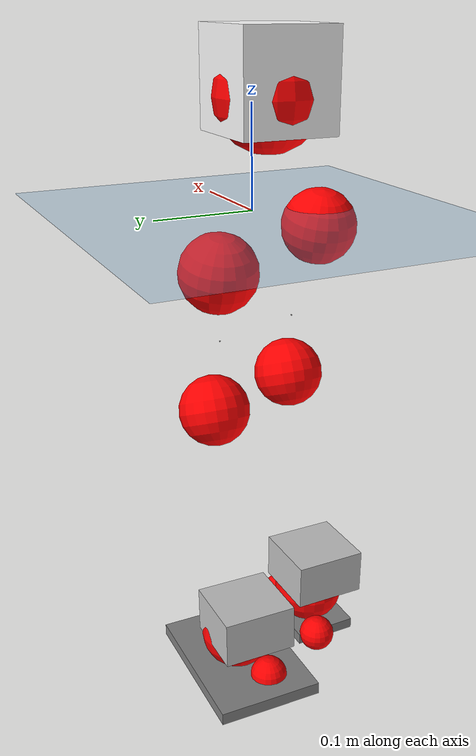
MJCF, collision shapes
<mujoco model="pi_12dof_release_v1">
  <compiler angle="radian" assetdir="assets" balanceinertia="true" inertiafromgeom="false"/>

  <option timestep="0.005" density="1.2" viscosity="2e-05"/>

  <size nkey="1"/>

  <visual>
    <quality shadowsize="8192"/>
    <map shadowclip="0.5"/>
  </visual>

  <default>
    <default class="/">
      <joint armature="0.01" damping="0.01" frictionloss="0.01"/>
      <geom contype="0" conaffinity="0" group="1" solref="-1000 -80"/>
      <site size="0.01 0.005 0.005" group="5"/>
      <general forcelimited="true" biastype="affine" gainprm="20" biasprm="0 -20 -0.5"/>
      <default class="foot">
        <geom size="0.0845 0.036 0.005" type="box" condim="6" group="4" priority="1" friction="0.9 0.2 0.2" solimp="0.015 1 0.005"/>
      </default>
      <default class="reward_collision_sphere">
        <geom group="5" rgba="1 0 0 1"/>
      </default>
    </default>
  </default>

  <asset>
    <texture type="skybox" colorspace="auto" name="//unnamed_texture_0" builtin="gradient" rgb1="0.95 0.95 0.95" rgb2="0.95 0.95 0.95" width="100" height="600"/>
    <texture type="2d" colorspace="auto" name="texplane" builtin="checker" rgb1="0.345 0.575 0.748" rgb2="0.345 0.575 0.748" markrgb="1 1 1" width="512" height="512"/>
    <material name="MatPlane" class="/" texture="texplane" texuniform="true" texrepeat="2 2" specular="0.9"/>
    <mesh name="baselink_1" class="/" file="baselink_1.STL"/>
    <mesh name="r_hip_pitch_link" class="/" file="r_hip_pitch_link.STL"/>
    <mesh name="r_hip_roll_link" class="/" file="r_hip_roll_link.STL"/>
    <mesh name="r_thigh_link" class="/" file="r_thigh_link.STL"/>
    <mesh name="r_calf_link" class="/" file="r_calf_link.STL"/>
    <mesh name="r_ankle_pitch_link" class="/" file="r_ankle_pitch_link.STL"/>
    <mesh name="r_ankle_roll_link" class="/" file="r_ankle_roll_link.STL"/>
    <mesh name="l_hip_pitch_link" class="/" file="l_hip_pitch_link.STL"/>
    <mesh name="l_hip_roll_link" class="/" file="l_hip_roll_link.STL"/>
    <mesh name="l_thigh_link" class="/" file="l_thigh_link.STL"/>
    <mesh name="l_calf_link" class="/" file="l_calf_link.STL"/>
    <mesh name="l_ankle_pitch_link" class="/" file="l_ankle_pitch_link.STL"/>
    <mesh name="l_ankle_roll_link" class="/" file="l_ankle_roll_link.STL"/>
  </asset>

  <worldbody>
    <geom name="floor" class="/" size="100 100 0.125" type="plane" group="0" material="MatPlane"/>
    <light name="toplight_shadow" class="/" pos="0 0 5" dir="0.0990148 0.0990148 -0.990148" type="directional" ambient="0.04 0.04 0.04" diffuse="0.55 0.55 0.55" specular="0.12 0.12 0.12"/>
    <light name="toplight_fill" class="/" pos="0 0 5" dir="0.0990148 0.0990148 -0.990148" type="directional" castshadow="false" ambient="0.04 0.04 0.04" diffuse="0.3 0.3 0.3" specular="0.08 0.08 0.08"/>
    <body name="trunk" pos="-0.0155554 -0.00880286 0.00383017" quat="0.999994 0.00278614 0.00185766 0.000220503">
      <inertial pos="0.000135845 0.00377001 0.060111" quat="0.71484 -0.033135 0.0233716 0.698112" mass="1.80794" diaginertia="0.00079833 0.00119703 0.0265832"/>
      <joint name="//unnamed_joint_0" type="free"/>
      <geom name="//unnamed_geom_1" class="/" type="mesh" density="0" rgba="1 1 1 1" mesh="baselink_1"/>
      <geom name="//unnamed_geom_2" class="/" size="0.0473154 0.0473154 0.0473154" pos="0 0 0.117021" type="box" rgba="1 1 1 1"/>
      <geom name="//unnamed_geom_3" class="reward_collision_sphere" size="0.052047" pos="0 0 0.102393"/>
      <site name="imu" class="/" pos="-0.035916 0.0252207 0.0853428" size="0.00946309"/>
      <camera name="track" class="/" pos="0 -1.43517 0" quat="0.707107 0.707107 0 0" mode="trackcom"/>
      <camera name="ego_camera" class="/" pos="0.0493934 0 0.263297" quat="-0.5 -0.5 0.5 0.5"/>
      <body name="r_hip_pitch_link" pos="-0.00360863 -0.0198556 -0.0370877" quat="0.992355 -0.00560209 -0.123207 0.00448675">
        <inertial pos="0.0170827 -0.0306504 0.00157968" quat="-0.0178824 0.702959 -0.0346469 0.710161" mass="0.351028" diaginertia="1.5033e-05 2.24958e-05 0.000611642"/>
        <joint name="r_hip_pitch_joint" class="/" pos="0 0 0" axis="-0.0171888 -0.99745 -0.069274" stiffness="0.0214813" range="-2.0777 1.00498" armature="0.00944347" damping="0" frictionloss="0.00941156"/>
        <geom name="//unnamed_geom_4" class="/" type="mesh" density="0" rgba="0.75294 0.75294 0.75294 1" mesh="r_hip_pitch_link"/>
        <geom name="//unnamed_geom_5" class="/" size="0.000473154 0.000473154 0.000473154" type="box" rgba="0.75294 0.75294 0.75294 1"/>
        <body name="r_hip_roll_link" pos="0.0121259 -0.0398874 0.0106981" quat="0.999989 0.00343197 0.000237456 0.00316554">
          <inertial pos="0.00250444 -0.000551677 -0.0713738" quat="0.70378 -0.0312528 -0.0922863 0.703704" mass="0.347624" diaginertia="4.40582e-05 5.80623e-05 0.000980122"/>
          <joint name="r_hip_roll_joint" class="/" pos="0 0 0" axis="-0.997362 0.0722247 0.00720503" stiffness="0.00241462" range="-0.213239 0.190417" armature="0.00453607" damping="0.0518361" frictionloss="0.0156158"/>
          <geom name="//unnamed_geom_6" class="/" type="mesh" density="0" rgba="0.75294 0.75294 0.75294 1" mesh="r_hip_roll_link"/>
          <geom name="//unnamed_geom_7" class="/" size="0.000473154 0.000473154 0.000473154" type="box" rgba="0.75294 0.75294 0.75294 1"/>
          <geom name="//unnamed_geom_8" class="reward_collision_sphere" size="0.0378523"/>
          <body name="r_thigh_link" pos="-0.00292445 0.0179793 -0.0980899" quat="0.999979 0.00453873 -0.00452574 -0.000583608">
            <inertial pos="-0.00993496 0.00739962 -0.0683636" quat="0.683046 0.729776 0.00788755 0.0285022" mass="0.0700321" diaginertia="1.5494e-05 1.51414e-05 0.000393204"/>
            <joint name="r_thigh_joint" class="/" pos="0 0 0" axis="0.0478671 -0.0287127 -0.998441" stiffness="0.0855956" range="-0.559409 0.255721" armature="0.00845527" damping="0" frictionloss="0.0140844"/>
            <geom name="//unnamed_geom_9" class="/" type="mesh" density="0" rgba="0.75294 0.75294 0.75294 1" mesh="r_thigh_link"/>
            <geom name="//unnamed_geom_10" class="/" size="0.000473154 0.000473154 0.000473154" type="box" rgba="0.75294 0.75294 0.75294 1"/>
            <body name="r_calf_link" pos="0.0177079 -0.019178 -0.0884513" quat="0.947468 0.0014352 0.319846 0.000683477">
              <inertial pos="-0.0174949 -0.00799026 -0.0858855" quat="0.998266 -0.0348286 0.0463607 -0.0101409" mass="0.509668" diaginertia="0.000359957 0.00060614 0.00093419"/>
              <joint name="r_calf_joint" class="/" pos="0 0 0" axis="0.0817017 -0.996651 0.00328685" stiffness="0.0502923" range="-1.57167 0.664173" armature="0.00506795" damping="0.0317197" frictionloss="0.0120585"/>
              <geom name="//unnamed_geom_11" class="/" type="mesh" density="0" rgba="0.75294 0.75294 0.75294 1" mesh="r_calf_link"/>
              <geom name="//unnamed_geom_12" class="/" size="0.000473154 0.000473154 0.000473154" type="box" rgba="0.75294 0.75294 0.75294 1"/>
              <geom name="//unnamed_geom_13" class="reward_collision_sphere" size="0.0378523"/>
              <body name="r_ankle_pitch_link" pos="0.00137509 0.00754557 -0.216083" quat="0.980132 0.000676374 -0.198343 -0.000447361">
                <inertial pos="0.0134643 -0.0159917 -0.00713495" quat="0.000854038 0.709492 -0.00195684 0.70471" mass="0.133236" diaginertia="3.71774e-05 3.53977e-05 0.000721289"/>
                <joint name="r_ankle_pitch_joint" class="/" pos="0 0 0" axis="0.0493993 -0.998148 -0.0354902" range="-1.48516 0.501079" armature="0.0157005" damping="0" frictionloss="0.015566"/>
                <geom name="//unnamed_geom_14" class="/" type="mesh" density="0" rgba="0.75294 0.75294 0.75294 1" mesh="r_ankle_pitch_link"/>
                <geom name="//unnamed_geom_15" class="/" size="0.036906 0.0378523 0.0236577" type="box" rgba="0.75294 0.75294 0.75294 1"/>
                <body name="r_ankle_roll_link" pos="0.0525057 -0.00549141 -0.0147808" quat="0.999962 -0.00404981 -0.00770863 -0.000219607">
                  <inertial pos="-0.0343062 0.0122369 -0.035744" quat="0.561304 0.407718 0.451231 0.561332" mass="0.554461" diaginertia="0.000130148 0.000170068 0.0015813"/>
                  <joint name="r_ankle_roll_joint" class="/" pos="0 0 0" axis="-0.996169 0.0538561 0.0689011" stiffness="0.0578219" range="-0.190443 0.257323" armature="0.00616723" damping="0" frictionloss="0.0119929"/>
                  <geom name="//unnamed_geom_16" class="/" type="mesh" density="0" rgba="0.75294 0.75294 0.75294 1" mesh="r_ankle_roll_link"/>
                  <geom name="//unnamed_geom_17" class="/" type="mesh" rgba="0.75294 0.75294 0.75294 1" mesh="r_ankle_roll_link"/>
                  <geom name="right_foot" class="foot" size="0.0414022 0.0337067 0.00581444" pos="-0.0335875 0 -0.0643615"/>
                  <geom name="//unnamed_geom_19" class="reward_collision_sphere" size="0.0378523" pos="-0.032929 0 -0.0292552"/>
                  <geom name="//unnamed_geom_20" class="reward_collision_sphere" size="0.0189262" pos="0.00987869 0.0143517 -0.0585105"/>
                  <geom name="//unnamed_geom_21" class="reward_collision_sphere" size="0.0189262" pos="-0.0790295 0.0143517 -0.0585105"/>
                  <site name="right_foot" class="foot" pos="-0.0335875 0 -0.0643615" size="0.00946309"/>
                </body>
              </body>
            </body>
          </body>
        </body>
      </body>
      <body name="l_hip_pitch_link" pos="-0.0189068 0.0319934 -0.0424349" quat="0.992537 -0.00242121 -0.12192 -0.000443682">
        <inertial pos="-0.0161337 0.0573257 -0.00154347" quat="-0.111128 0.709464 0.0115555 0.695829" mass="0.378523" diaginertia="1.763e-05 2.01821e-05 0.000815109"/>
        <joint name="l_hip_pitch_joint" class="/" pos="0 0 0" axis="-0.0905375 0.995752 -0.0167352" stiffness="0.0785155" range="-0.923866 1.65263" armature="0.0169411" damping="0" frictionloss="0.00470038"/>
        <geom name="//unnamed_geom_22" class="/" type="mesh" density="0" rgba="0.75294 0.75294 0.75294 1" mesh="l_hip_pitch_link"/>
        <geom name="//unnamed_geom_23" class="/" size="0.000473154 0.000473154 0.000473154" type="box" rgba="0.75294 0.75294 0.75294 1"/>
        <body name="l_hip_roll_link" pos="-0.0107991 0.0320716 -0.00237621" quat="0.999991 0.00242037 0.00106271 0.00335193">
          <inertial pos="-0.0076322 -0.0168486 -0.0923805" quat="0.732446 -0.114228 -0.0946616 0.664465" mass="0.25412" diaginertia="3.99371e-05 4.22475e-05 0.000882464"/>
          <joint name="l_hip_roll_joint" class="/" pos="0 0 0" axis="-0.998604 -0.0281026 0.0447308" stiffness="0.0583317" range="-0.403879 -0.0848667" armature="0.00191878" damping="0.0574038" frictionloss="0.0147305"/>
          <geom name="//unnamed_geom_24" class="/" type="mesh" density="0" rgba="0.75294 0.75294 0.75294 1" mesh="l_hip_roll_link"/>
          <geom name="//unnamed_geom_25" class="/" size="0.000473154 0.000473154 0.000473154" type="box" rgba="0.75294 0.75294 0.75294 1"/>
          <geom name="//unnamed_geom_26" class="reward_collision_sphere" size="0.0378523"/>
          <body name="l_thigh_link" pos="0.0117315 -0.014295 -0.0835848" quat="0.99996 -0.00170897 0.00542866 -0.00691283">
            <inertial pos="-0.00435844 0.0011081 -0.0882961" quat="0.656634 0.752679 -0.00912151 0.0471372" mass="0.11215" diaginertia="1.56628e-05 1.97532e-05 0.000366774"/>
            <joint name="l_thigh_joint" class="/" pos="0 0 0" axis="-0.0399611 -0.00691578 -0.999177" range="-0.26808 0.374154" armature="0.00790084" damping="0.0663978" frictionloss="0.00742199"/>
            <geom name="//unnamed_geom_27" class="/" type="mesh" density="0" rgba="0.75294 0.75294 0.75294 1" mesh="l_thigh_link"/>
            <geom name="//unnamed_geom_28" class="/" size="0.000473154 0.000473154 0.000473154" type="box" rgba="0.75294 0.75294 0.75294 1"/>
            <body name="l_calf_link" pos="0.0167564 -0.0092136 -0.0981277" quat="0.947044 0.00155611 0.321084 -0.00335286">
              <inertial pos="-0.0129061 -0.00783081 -0.103352" quat="0.996552 0.0458855 -0.0448015 -0.0526425" mass="0.737821" diaginertia="0.000402516 0.000605669 0.00106917"/>
              <joint name="l_calf_joint" class="/" pos="0 0 0" axis="0.0556675 0.997065 -0.0525636" range="-0.903002 1.47564" armature="0.0094436" damping="0" frictionloss="0.016374"/>
              <geom name="//unnamed_geom_29" class="/" type="mesh" density="0" rgba="0.75294 0.75294 0.75294 1" mesh="l_calf_link"/>
              <geom name="//unnamed_geom_30" class="/" size="0.000473154 0.000473154 0.000473154" type="box" rgba="0.75294 0.75294 0.75294 1"/>
              <geom name="//unnamed_geom_31" class="reward_collision_sphere" size="0.0378523"/>
              <body name="l_ankle_pitch_link" pos="-0.00459611 0.00689294 -0.22031" quat="0.980885 -0.00110409 -0.194583 4.75589e-05">
                <inertial pos="-0.00382617 0.00297556 -0.0075827" quat="0.0868725 0.702845 0.0162366 0.705831" mass="0.15744" diaginertia="3.85839e-05 3.36524e-05 0.000603574"/>
                <joint name="l_ankle_pitch_joint" class="/" pos="0 0 0" axis="0.0180451 0.999163 -0.0367168" range="-0.752679 1.06331" armature="0.013277" damping="0.0682727" frictionloss="0.00664558"/>
                <geom name="//unnamed_geom_32" class="/" type="mesh" density="0" rgba="0.75294 0.75294 0.75294 1" mesh="l_ankle_pitch_link"/>
                <geom name="//unnamed_geom_33" class="/" size="0.036906 0.0378523 0.0236577" type="box" rgba="0.75294 0.75294 0.75294 1"/>
                <body name="l_ankle_roll_link" pos="0.0493567 0.00253964 0.00405904" quat="0.999999 -0.000536819 0.000337546 -0.000835871">
                  <inertial pos="-0.000313092 0.017613 -0.0377813" quat="0.572088 0.430293 0.421196 0.556918" mass="0.378117" diaginertia="0.00017055 0.000168001 0.00197523"/>
                  <joint name="l_ankle_roll_joint" class="/" pos="0 0 0" axis="-0.99928 0.0256865 0.0279308" range="-0.284561 0.388456" armature="0.00681201" damping="0" frictionloss="0.00220908"/>
                  <geom name="//unnamed_geom_34" class="/" type="mesh" density="0" rgba="0.75294 0.75294 0.75294 1" mesh="l_ankle_roll_link"/>
                  <geom name="//unnamed_geom_35" class="/" type="mesh" rgba="0.75294 0.75294 0.75294 1" mesh="l_ankle_roll_link"/>
                  <geom name="left_foot" class="foot" size="0.0821434 0.0539322 0.00623545" pos="-0.0335875 0 -0.0643615"/>
                  <geom name="//unnamed_geom_37" class="reward_collision_sphere" size="0.0378523" pos="-0.032929 0 -0.0292552"/>
                  <geom name="//unnamed_geom_38" class="reward_collision_sphere" size="0.0189262" pos="0.00987869 -0.0143517 -0.0585105"/>
                  <geom name="//unnamed_geom_39" class="reward_collision_sphere" size="0.0189262" pos="-0.0790295 -0.0143517 -0.0585105"/>
                  <site name="left_foot" class="foot" pos="-0.0335875 0 -0.0643615" size="0.00946309"/>
                </body>
              </body>
            </body>
          </body>
        </body>
      </body>
    </body>
  </worldbody>

  <contact>
    <pair class="/" geom1="floor" geom2="right_foot" name="//unnamed_contact_1"/>
    <pair class="/" geom1="floor" geom2="left_foot" name="//unnamed_contact_0"/>
  </contact>

  <actuator>
    <general name="r_hip_pitch_joint" class="/" joint="r_hip_pitch_joint" forcerange="-12.7906 12.7906" gainprm="16.8497" biasprm="0 -16.8497 -0.517908"/>
    <general name="r_hip_roll_joint" class="/" joint="r_hip_roll_joint" forcerange="-7.97979 7.97979" gainprm="16.8497" biasprm="0 -16.8497 -0.517908"/>
    <general name="r_thigh_joint" class="/" joint="r_thigh_joint" forcerange="-26.4365 26.4365" gainprm="16.8497" biasprm="0 -16.8497 -0.517908"/>
    <general name="r_calf_joint" class="/" joint="r_calf_joint" forcerange="-6.97165 6.97165" gainprm="16.8497" biasprm="0 -16.8497 -0.517908"/>
    <general name="r_ankle_pitch_joint" class="/" joint="r_ankle_pitch_joint" forcerange="-25.0769 25.0769" gainprm="16.8497" biasprm="0 -16.8497 -0.517908"/>
    <general name="r_ankle_roll_joint" class="/" joint="r_ankle_roll_joint" forcerange="-14.163 14.163" gainprm="16.8497" biasprm="0 -16.8497 -0.517908"/>
    <general name="l_hip_pitch_joint" class="/" joint="l_hip_pitch_joint" forcerange="-20.2428 20.2428" gainprm="16.8497" biasprm="0 -16.8497 -0.517908"/>
    <general name="l_hip_roll_joint" class="/" joint="l_hip_roll_joint" forcerange="-30.7984 30.7984" gainprm="16.8497" biasprm="0 -16.8497 -0.517908"/>
    <general name="l_thigh_joint" class="/" joint="l_thigh_joint" forcerange="-12.969 12.969" gainprm="16.8497" biasprm="0 -16.8497 -0.517908"/>
    <general name="l_calf_joint" class="/" joint="l_calf_joint" forcerange="-19.6735 19.6735" gainprm="16.8497" biasprm="0 -16.8497 -0.517908"/>
    <general name="l_ankle_pitch_joint" class="/" joint="l_ankle_pitch_joint" forcerange="-16.2969 16.2969" gainprm="16.8497" biasprm="0 -16.8497 -0.517908"/>
    <general name="l_ankle_roll_joint" class="/" joint="l_ankle_roll_joint" forcerange="-11.3883 11.3883" gainprm="16.8497" biasprm="0 -16.8497 -0.517908"/>
  </actuator>

  <sensor>
    <gyro site="imu" name="imu_angular_velocity"/>
    <velocimeter site="imu" name="imu_linear_velocity"/>
    <framelinvel objtype="site" objname="left_foot" name="left_foot_global_linear_velocity"/>
    <framelinvel objtype="site" objname="right_foot" name="right_foot_global_linear_velocity"/>
  </sensor>

  <keyframe>
    <key name="home" qpos="0 0 0.291 1 0 0 0 0.4 0 0 -0.8 0.4 0 -0.4 0 0 0.8 -0.4 0"/>
  </keyframe>
</mujoco>
